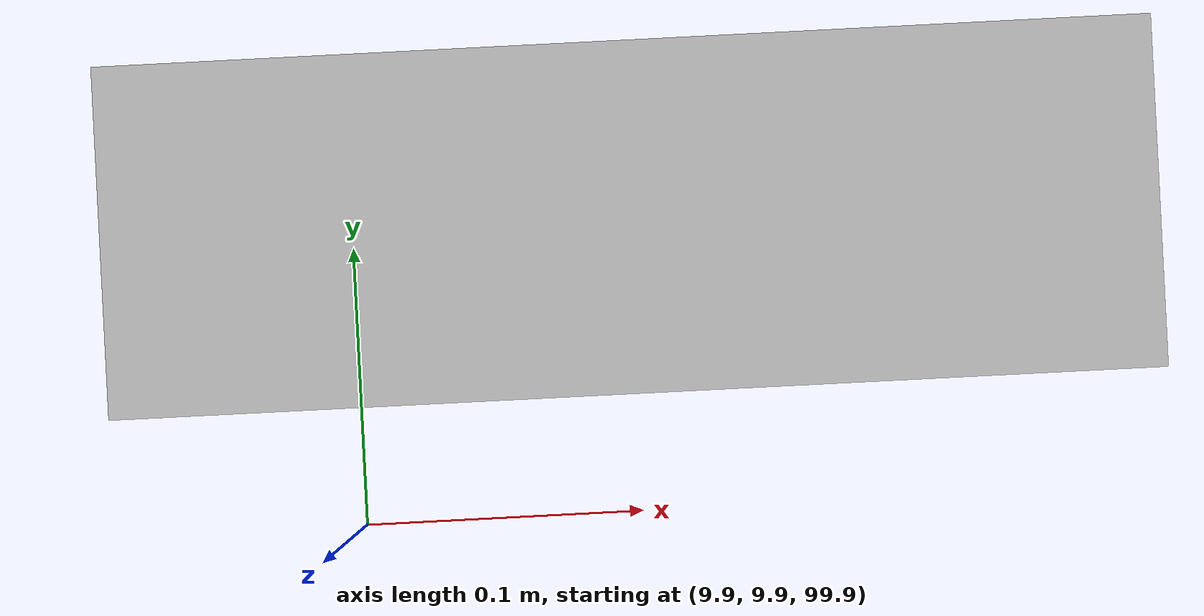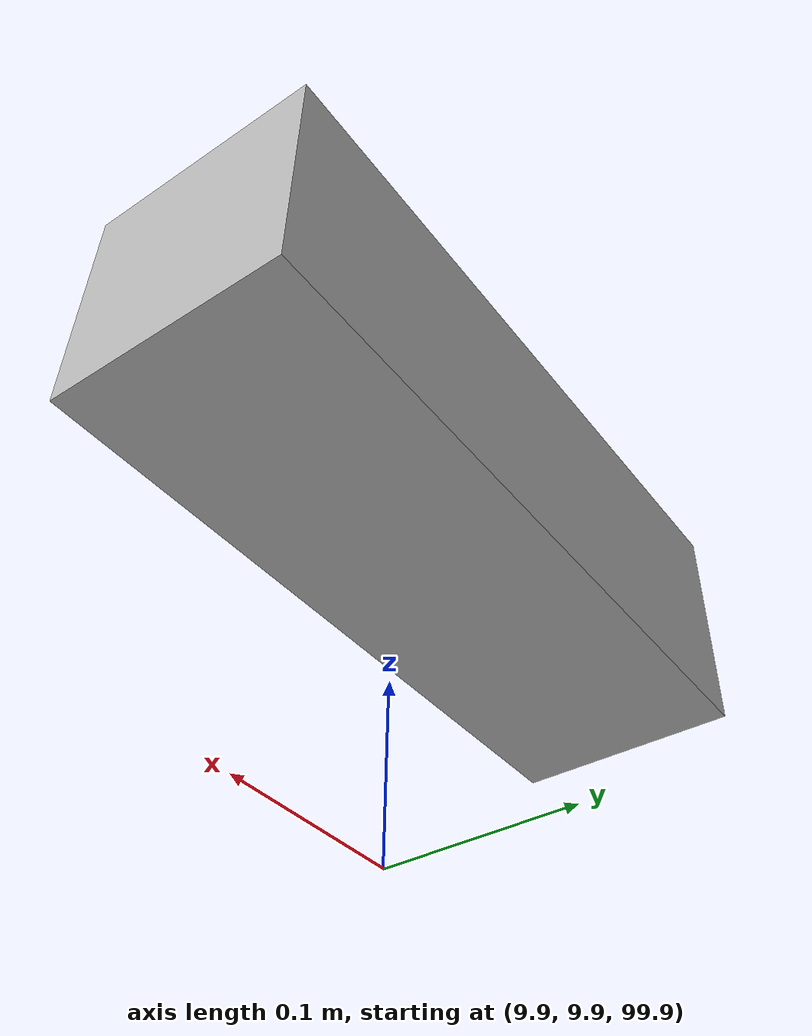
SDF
<?xml version='1.0'?>
<sdf version='1.5'>
  <model name='MBZIRColo_front_camera'>
    <pose>10 10 100 0 0 0</pose> <!--DOVREBBE VENIRE SOVRASCRITTA DAL MODELLO CHE LA INCLUDE -->
    <link name='base_link'>
      <pose> 0 0 0 0 0 0</pose>
      <visual name='base_link_visual'>
        <geometry>
          <box>
            <size>0.3 0.1 0.1</size>
          </box>
        </geometry>
      </visual>
      <inertial>
        <mass>1e-5</mass>
        <pose>-0.1 0 -0.1 0 0 0</pose>
        <inertia>
          <ixx>1e-6</ixx>
          <iyy>1e-6</iyy>
          <izz>1e-6</izz>
        </inertia>
      </inertial>

      <sensor name="camera" type="depth">
          <update_rate>5</update_rate>
          <camera>
            <horizontal_fov>1.047198</horizontal_fov>
            <image>
              <width>640</width>
              <height>480</height>
              <format>R8G8B8</format>
            </image>
            <clip>
              <near>0.05</near>
              <far>100</far>
            </clip>
          </camera>
          <plugin name="camera_plugin" filename="libgazebo_ros_openni_kinect.so">
            <baseline>0.2</baseline>
            <alwaysOn>true</alwaysOn>
            <updateRate>0.0</updateRate>
            <cameraName>myfront_camera_ir</cameraName>
            <imageTopicName>/myfront_camera/image_raw</imageTopicName>
            <cameraInfoTopicName>/myfront_camera/camera_info</cameraInfoTopicName>
            <depthImageTopicName>/myfront_camera/image_raw</depthImageTopicName>
            <depthImageInfoTopicName>/myfront_camera/camera_info</depthImageInfoTopicName>
            <pointCloudTopicName>/myfront_camera/point_cloud</pointCloudTopicName>
            <frameName>myfront_camera</frameName>
            <pointCloudCutoff>0.05</pointCloudCutoff>
            <distortionK1>0</distortionK1>
            <distortionK2>0</distortionK2>
            <distortionK3>0</distortionK3>
            <distortionT1>0</distortionT1>
            <distortionT2>0</distortionT2>
            <CxPrime>0</CxPrime>
            <Cx>0</Cx>
            <Cy>0</Cy>
            <focalLength>0</focalLength>
            <hackBaseline>0</hackBaseline>
          </plugin>
        </sensor>
      <static>false</static>
      <self_collide>0</self_collide>
    </link>
  </model>
</sdf>
